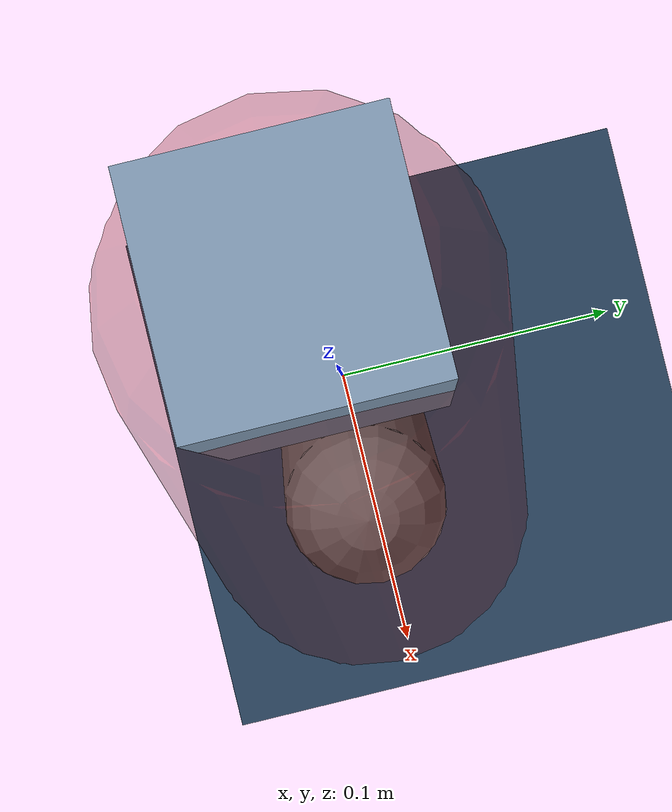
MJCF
<mujoco model="Hopper2D">
	<compiler inertiafromgeom="true" angle="radian" />
	<option timestep="0.001" integrator="implicit" cone="elliptic" solver="Newton" tolerance="1e-10" />

	<default>
		<geom contype="1" conaffinity="1" condim="3" friction="2 0.005 0.0001" solref="0.005 1" />
		<joint limited="true" damping="0.1" />
	</default>

	<asset>
		<texture name="skybox" type="skybox" builtin="gradient" rgb1=".4 .6 .8" rgb2="0 0 0" width="800" height="800" />
		<texture name="grid" type="2d" builtin="checker" rgb1=".1 .2 .3" rgb2=".2 .3 .4" width="300" height="300" mark="edge" markrgb=".2 .3 .4" />
		<material name="ground" texture="grid" texrepeat="1 1" texuniform="true" reflectance="0.1" />
		<material name="leg" rgba="0.5 0.6 0.7 1" />
	</asset>

	<worldbody>

		<geom name="floor" type="plane" size="5 5 0.25" material="ground" />

		<light directional="false" diffuse="0.8 0.8 0.8" specular="0.3 0.3 0.3" pos="0 0 2" dir="0 0 -1" />
		<light mode="targetbodycom" target="base" directional="false" diffuse="0.8 0.8 0.8" specular="0.3 0.3 0.3" pos="0 0 2" dir="0 0 -1" />

		<camera name="fixed" pos="0 -2 1" xyaxes="1 0 0 0 0 1" />
		<camera name="tracking" mode="trackcom" pos="0 -3 1" />

		<body name="root" pos="0 0 0.48210003930129136">
			<joint name="slide_x" type="slide" axis="1 0 0" range="-100 100" />
			<joint name="slide_z" type="slide" axis="0 0 1" range="0 10" />

			<body name="base" pos="0 0 0">
				<geom name="torso" type="box" size="0.03 0.03 0.1" mass="2.8280000000000003" material="leg" />

				<body name="link1" pos="0 0 0" euler="0 1.3830374204890574 0">
					<joint type="hinge" axis="0 -1 0" pos="0 0 0" name="hinge1" limited="true" range="-3.14 3.14" stiffness="0" damping="0.1" />
					<geom name="thigh" type="capsule" fromto="0 0 0 0.2636835944526027 0 0" size="0.05" rgba="0.5 0 0 0.3" mass="0.892077345576767" />

					<body name="link2" pos="0.2636835944526027 0 0" euler="0 0.4049395082651218 0">
						<joint type="hinge" axis="0 -1 0" pos="0 0 0" name="hinge2" limited="true" range="-3.14 3.14" stiffness="0" damping="0.1" />
						<geom name="shank" type="capsule" fromto="0 0 0 0.22841644484868867 0 0" size="0.025" mass="0.4246748003638198" />

					</body>
				</body>
			</body>
		</body>
	</worldbody>

	<actuator>
		<motor name="torque1" joint="hinge1" ctrlrange="-129.0490749031237 129.0490749031237" ctrllimited="true" gear="1" />
		<motor name="torque2" joint="hinge2" ctrlrange="-20.42128092642597 20.42128092642597" ctrllimited="true" gear="1" />
	</actuator>
</mujoco>
